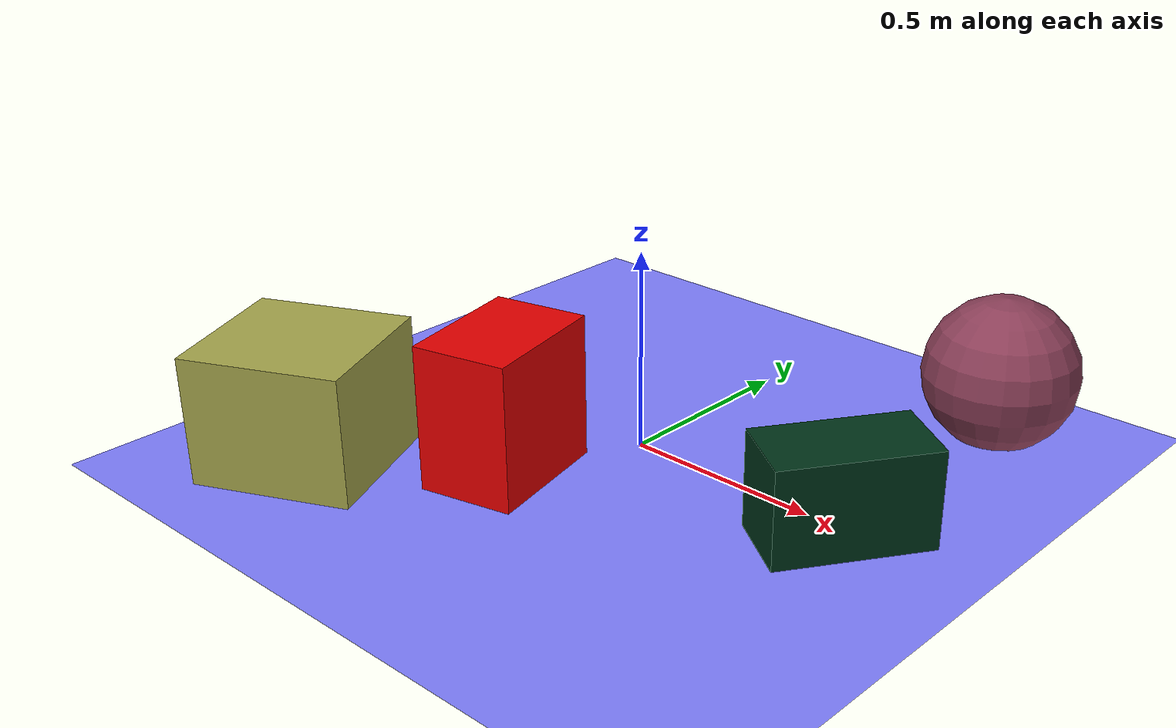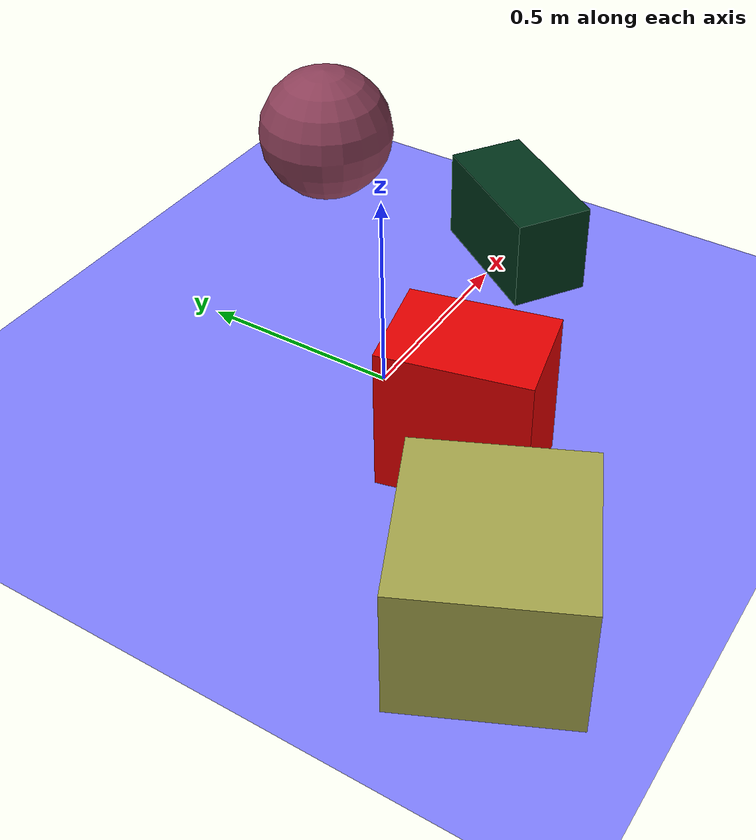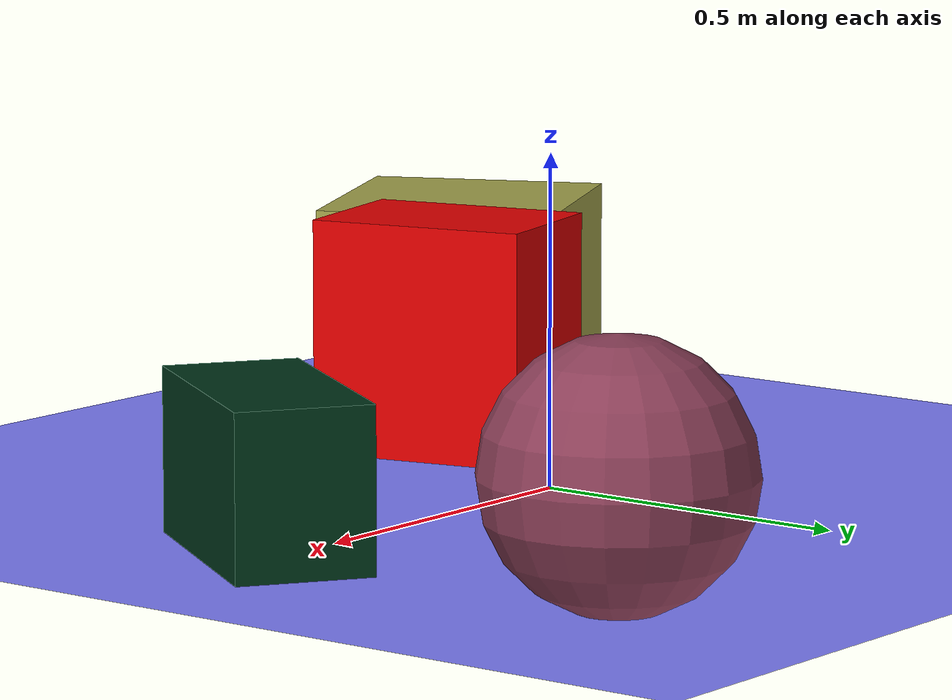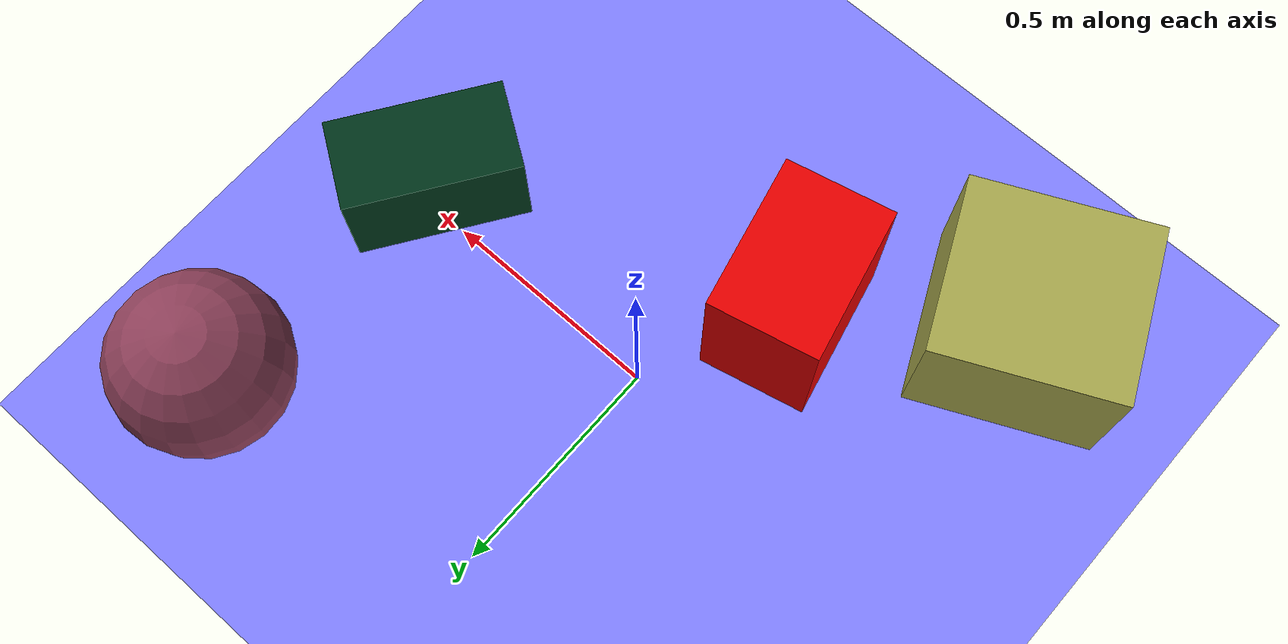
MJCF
<mujoco>
   <asset>
<texture type="skybox" builtin="gradient" rgb1="0.2 0.2 0.2" rgb2="0.8 0.5 0.5" width="256" height="256"/>
<texture name="gradient_0" builtin="gradient" rgb1="0.2 0.3 0.2" rgb2="0.9 0.2 0.5" width="200" height="200"/>
<texture name="gradient_1" builtin="gradient" rgb1="0.3 0.7 0.4" rgb2="1.0 0.6 0.2" width="200" height="200"/>
<texture name="flat_2" builtin="flat" rgb1="0.0 0.2 0.1" rgb2="0.0 0.2 0.1"  width="200" height="200"/>
<texture name="flat_3" builtin="flat" rgb1="0.9 0.0 0.0" rgb2="0.9 0.0 0.0"  width="200" height="200"/><material name="gradient_0_mat" reflectance="0" texture="gradient_0" texuniform="true"/>
<material name="gradient_1_mat" reflectance="0" texture="gradient_1" texuniform="true"/>
<material name="flat_2_mat" reflectance="0" texture="flat_2" texuniform="true"/>
<material name="flat_3_mat" reflectance="0" texture="flat_3" texuniform="true"/>
   </asset>

   <worldbody>
      <light diffuse=".9 .9 .9" pos="0 0 3" dir="0 0 -1"/>
     <geom type="plane" size="1 1 0.1" rgba="0.5 0.5 1.0 1"/>
<geom type="sphere" pos="0.63 0.59 0.19" size="0.19 0.19 0.19" material="gradient_0_mat" euler="0 0 67" />
<geom type="box" pos="-0.54 -0.59 0.16" size="0.2 0.19 0.16" material="gradient_1_mat" euler="0 0 25" />
<geom type="box" pos="0.61 -0.03 0.12" size="0.19 0.1 0.12" material="flat_2_mat" euler="0 0 56" />
<geom type="box" pos="-0.15 -0.31 0.18" size="0.12 0.17 0.18" material="flat_3_mat" euler="0 0 13" /><camera euler="60 0 180" fovy="60" name="camera1" pos="-0.2 -1.5 1"></camera>   </worldbody>
</mujoco>
